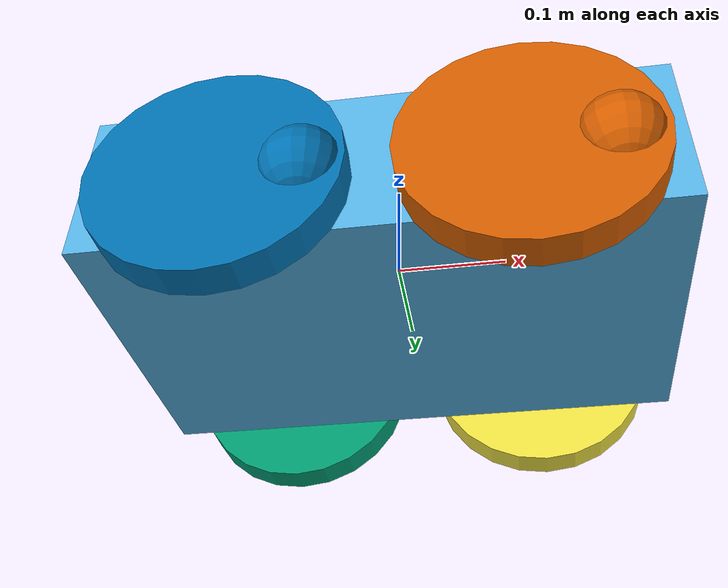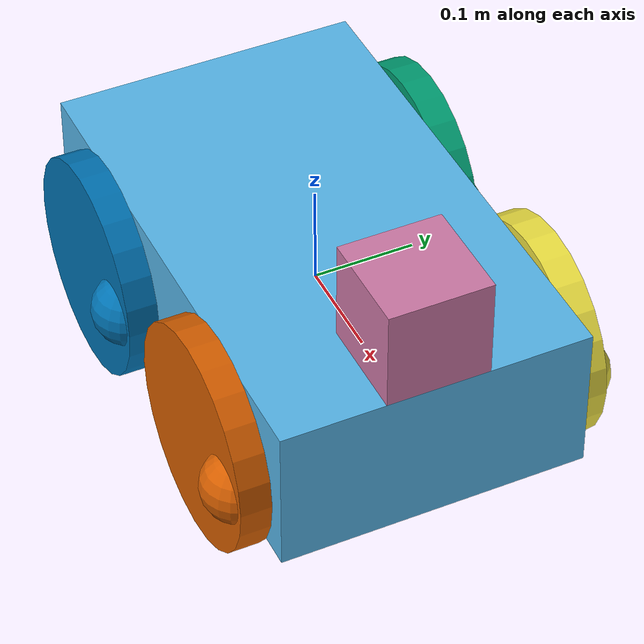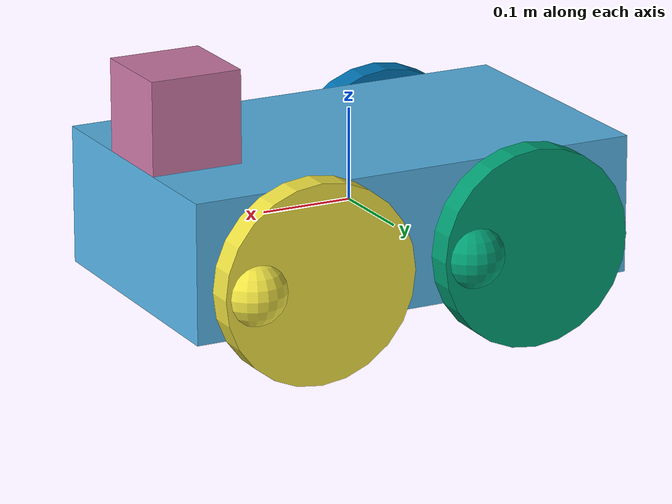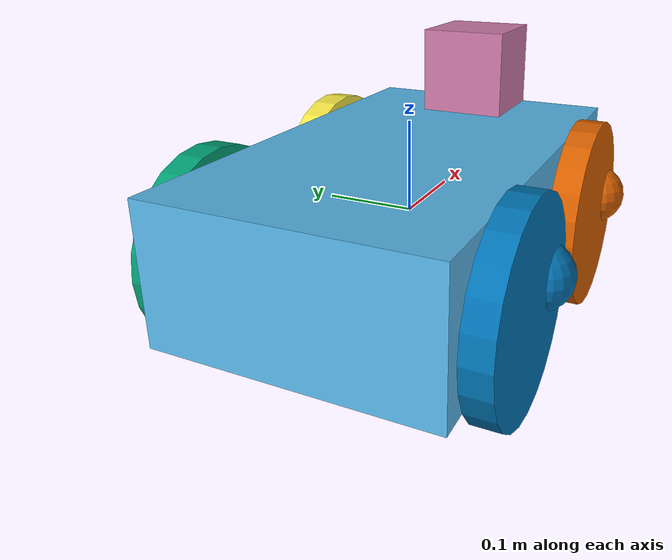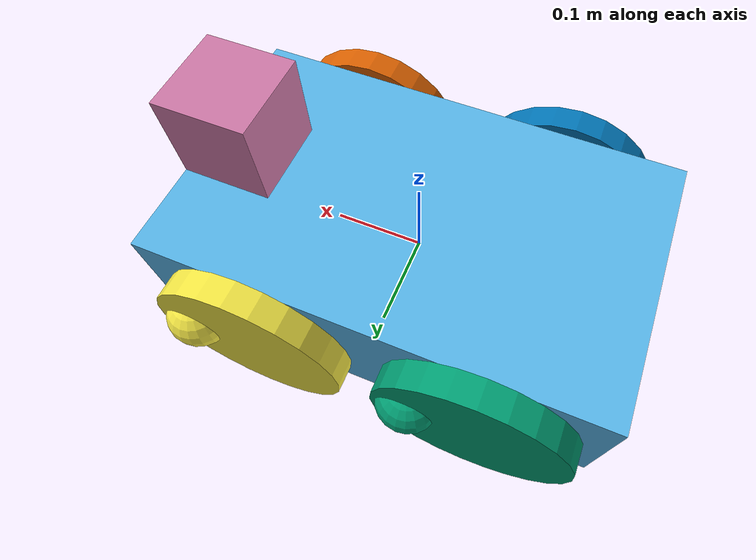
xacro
<?xml version='1.0'?>

<!-- choose a name space and start xacro -->
<robot name="scout" xmlns:xacro="http://www.ros.org/wiki/xacro">

  <!-- Start by including all required xacro files which hold the macros -->
  <xacro:include filename="$(find ssam_simulation)/models/scout/scout.gazebo" />
  <xacro:include filename="$(find ssam_simulation)/models/scout/materials.xacro"   />
  <xacro:include filename="$(find ssam_simulation)/models/scout/macros.xacro"      />
  <xacro:include filename="$(find ssam_simulation)/models/scout/parameter.xacro"   />

 <!-- Create a dummy link as base link -->
  <link name='base_link'>
    <pose>0 0 0 0 0 0</pose>
  </link>
  <joint type="fixed" name="base_link_to_chassis">
    <child link="chassis_link"/>
    <parent link="base_link"/>
  </joint>

  <!-- Define the chassis of the differential drive robot, which is our base -->
  <link name='chassis_link'>
    <pose>0 0 0 0 0 0</pose>
    <!-- Define inertial system for the chassis -->
    <inertial>
      <mass value="${m_chassis}"/>
      <xacro:box_inertia m="${m_chassis}" x="${x_chassis}" y="${y_chassis}" z="${z_chassis}"/>
    </inertial>
    <!-- Define collision sorrounding box -->
    <collision name='collision'>
      <origin xyz="0 0 0" rpy=" 0 0 0"/>
      <geometry>
        <box size="${x_chassis} ${y_chassis} ${z_chassis}"/>
      </geometry>
    </collision>
    <!-- Define visualization structure -->
    <visual name='base_link_visual'>
	  <origin xyz="0 0 0" rpy=" 0 0 0"/>
      <geometry>
        <box size="${x_chassis} ${y_chassis} ${z_chassis}"/>
      </geometry>
    </visual>
  </link>

  <!-- Add the wheels for the robot -->
  <xacro:macro name="scout_wheel" params="prefix xReflect yReflect">
    <link name="${prefix}_wheel">
      <collision name="collision">
        <origin xyz="0 0 0" rpy="0 1.5707 1.5707"/>
        <geometry>
          <cylinder radius="${r_wheel}" length="${h_wheel}"/>
        </geometry>
        <surface>
          <friction>
            <ode>
              <mu>1.0</mu>
              <mu2>1.0</mu2>
              <slip1>0.0</slip1>
              <slip2>0.0</slip2>
            </ode>
          </friction>
        </surface>
      </collision>
      <visual name="${prefix}_wheel_visual">
        <origin xyz="0 0 0" rpy="0 1.5707 1.5707"/>
        <geometry>
          <cylinder radius="${r_wheel}" length="${h_wheel}"/>
        </geometry>
      </visual>
      <visual name="${prefix}_wheel_test_ball">
        <origin xyz="0.07 0 0" rpy="0 0 0"/>
        <geometry>
          <sphere radius="${r_wheel/3}"/>
        </geometry>
      </visual>
      <inertial>
        <origin xyz="0 0 0" rpy="0 1.5707 1.5707"/>
        <mass value="${m_wheel}"/>
        <cylinder_inertia m="${m_wheel}" r="${r_wheel}" h="${h_wheel}"/>
        <xacro:cylinder_inertia m="${m_wheel}" r="${r_wheel}" h="${h_wheel}"/>
      </inertial>
    </link>

    <joint type="continuous" name="${prefix}_wheel_hinge">
      <origin xyz="${xReflect*x_chassis/4} ${yReflect*(y_chassis/2+h_wheel/2)} ${r_wheel/2-z_chassis/2}" rpy="0 0 0"/>
      <child link="${prefix}_wheel"/>
      <parent link="base_link"/>
      <axis xyz="0 1 0" rpy="0 0 0"/>
      <limit effort="100" velocity="100"/>
      <joint_properties damping="0.0" friction="0.0"/>
    </joint>
  </xacro:macro>

  <xacro:scout_wheel prefix="left_back" xReflect="-1" yReflect="1"/>
  <xacro:scout_wheel prefix="left_front" xReflect="1" yReflect="1"/>
  <xacro:scout_wheel prefix="right_back" xReflect="-1" yReflect="-1"/>
  <xacro:scout_wheel prefix="right_front" xReflect="1" yReflect="-1"/>

  <link name="camera_link">
    <collision>
      <origin xyz="0 0 0" rpy="0 0 0"/>
      <geometry>
		<box size="${l_camera} ${w_camera} ${h_camera}"/>
      </geometry>
    </collision>
    <visual>
      <origin xyz="0 0 0" rpy="0 0 0"/>
      <geometry>
        <box size="${l_camera} ${w_camera} ${h_camera}"/>
      </geometry>
    </visual>
    <inertial>
      <mass value="1e-5" />
      <origin xyz="0 0 0" rpy="0 0 0"/>
      <inertia ixx="1e-6" ixy="0" ixz="0" iyy="1e-6" iyz="0" izz="1e-6" />
    </inertial>
  </link>

  <joint name="camera_joint" type="fixed">
    <origin xyz="${x_camera} ${y_camera} ${z_camera}" rpy="0 0 0"/>
    <parent link="base_link"/>
    <child link="camera_link"/>
  </joint>

  <link name="camera_link_optical">
  </link>

  <joint name="camera_optical_joint" type="fixed">
    <origin xyz="0 0 0" rpy="${-pi/2} 0 ${-pi/2}"/>
    <parent link="camera_link"/>
    <child link="camera_link_optical"/>
  </joint>

  <link name="imu_link">
    <pose>0 0 0 0 0 0</pose>
  </link>
  <joint name="base_imu_link" type="fixed">
    <origin xyz="0 0 0" rpy="0 0 0" />
    <parent link="base_link" />
    <child link="imu_link" />
  </joint>

  <transmission name="left_back_wheel_transmission">
    <type>transmission_interface/SimpleTransmission</type>
    <joint name="left_back_wheel_hinge">
      <hardwareInterface>hardware_interface/VelocityJointInterface</hardwareInterface>
    </joint>
    <actuator name="left_back_wheel_motor">
      <hardwareInterface>hardware_interface/VelocityJointInterface</hardwareInterface>
      <mechanicalReduction>1</mechanicalReduction>
    </actuator>
  </transmission>

  <transmission name="right_back_wheel_transmission">
    <type>transmission_interface/SimpleTransmission</type>
    <joint name="right_back_wheel_hinge">
      <hardwareInterface>hardware_interface/VelocityJointInterface</hardwareInterface>
    </joint>
    <actuator name="right_back_wheel_motor">
      <hardwareInterface>hardware_interface/VelocityJointInterface</hardwareInterface>
      <mechanicalReduction>1</mechanicalReduction>
    </actuator>
  </transmission>

  <transmission name="left_front_wheel_transmission">
    <type>transmission_interface/SimpleTransmission</type>
    <joint name="left_front_wheel_hinge">
      <hardwareInterface>hardware_interface/VelocityJointInterface</hardwareInterface>
    </joint>
    <actuator name="left_front_wheel_motor">
      <hardwareInterface>hardware_interface/VelocityJointInterface</hardwareInterface>
      <mechanicalReduction>1</mechanicalReduction>
    </actuator>
  </transmission>

  <transmission name="right_front_wheel_transmission">
    <type>transmission_interface/SimpleTransmission</type>
    <joint name="right_front_wheel_hinge">
      <hardwareInterface>hardware_interface/VelocityJointInterface</hardwareInterface>
    </joint>
    <actuator name="right_front_wheel_motor">
      <hardwareInterface>hardware_interface/VelocityJointInterface</hardwareInterface>
      <mechanicalReduction>1</mechanicalReduction>
    </actuator>
  </transmission>

 </robot>

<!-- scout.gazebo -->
<robot xmlns:xacro="http://www.ros.org/wiki/xacro">
  <xacro:include filename="$(find ssam_simulation)/models/scout/parameter.xacro" />

  <gazebo>
    <plugin name="gazebo_ros_control" filename="libgazebo_ros_control.so">
      <robotNamespace>/scout</robotNamespace>
      <robotSimType>gazebo_ros_control/DefaultRobotHWSim</robotSimType>
    </plugin>
  </gazebo>

  <gazebo reference="imu_link">
    <gravity>true</gravity>
    <sensor name="imu_sensor" type="imu">
        <always_on>true</always_on>
        <update_rate>100</update_rate>
        <visualize>true</visualize>
        <topic>__default_topic__</topic>
        <plugin filename="libgazebo_ros_imu_sensor.so" name="imu_plugin">
            <topicName>/imu0</topicName>
            <bodyName>imu_link</bodyName>
            <updateRateHZ>10.0</updateRateHZ>
            <gaussianNoise>0.0</gaussianNoise>
            <xyzOffset>0 0 0</xyzOffset>
            <rpyOffset>0 0 0</rpyOffset>
            <frameName>imu_link</frameName>
            <initialOrientationAsReference>false</initialOrientationAsReference>
        </plugin>
        <pose>0 0 0 0 0 0</pose>
    </sensor>
  </gazebo>

<gazebo reference="camera_link">
    <sensor type="multicamera" name="stereo_camera">
      <update_rate>${camera_fps}</update_rate>
      <camera name="left">
        <horizontal_fov>${camera_fov}</horizontal_fov>
        <image>
          <width>${camera_res_w}</width>
          <height>${camera_res_h}</height>
          <format>R8G8B8</format>
        </image>
        <clip>
          <near>0.02</near>
          <far>300</far>
        </clip>
        <noise>
          <type>gaussian</type>
          <mean>0.0</mean>
          <stddev>0.007</stddev>
        </noise>
      </camera>
      <camera name="right">
        <pose>0 -0.08 0 0 0 0</pose>
        <horizontal_fov>${camera_fov}</horizontal_fov>
        <image>
          <width>${camera_res_w}</width>
          <height>${camera_res_h}</height>
          <format>R8G8B8</format>
        </image>
        <clip>
          <near>0.02</near>
          <far>300</far>
        </clip>
        <noise>
          <type>gaussian</type>
          <mean>0.0</mean>
          <stddev>0.007</stddev>
        </noise>
      </camera>
      <plugin name="stereo_camera_controller" filename="libgazebo_ros_multicamera.so">
        <alwaysOn>true</alwaysOn>
        <updateRate>0.0</updateRate>
        <cameraName>stereo</cameraName>
        <imageTopicName>image_raw</imageTopicName>
        <cameraInfoTopicName>camera_info</cameraInfoTopicName>
        <frameName>camera_link_optical</frameName>
        <hackBaseline>0.08</hackBaseline>
        <distortionK1>0.0</distortionK1>
        <distortionK2>0.0</distortionK2>
        <distortionK3>0.0</distortionK3>
        <distortionT1>0.0</distortionT1>
        <distortionT2>0.0</distortionT2>
      </plugin>
    </sensor>
  </gazebo>

  <!-- Paint the robot -->
<gazebo reference="base_link">
    <material>Gazebo/Orange</material>
  </gazebo>
</robot>

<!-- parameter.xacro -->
<robot xmlns:xacro="http://www.ros.org/wiki/xacro">

  <!-- Define parameter for the differential drive robot -->
  <!-- Parameter for the chassis, size [m] and mass [kg] -->
  <xacro:property name="x_chassis" value="0.5" />
  <xacro:property name="y_chassis" value="0.3" />
  <xacro:property name="z_chassis" value="0.15" />
  <xacro:property name="m_chassis" value="10.0" />

  <!-- Parameter for the wheels, radius [m], height [m], mass [kg], torque [Nm], wheelbase [m] -->
  <xacro:property name="r_wheel" value="0.1075"/>
  <xacro:property name="h_wheel" value="0.03" />
  <xacro:property name="m_wheel" value="3.0" />
  <xacro:property name="torque_wheel" value="10" />
  <xacro:property name="L_wheel" value="0.1788" />

  <!-- Parameters for the stereo camera-->
  <xacro:property name="x_camera" value="0.2" />
  <xacro:property name="y_camera" value="0" />
  <xacro:property name="z_camera" value="${z_chassis/2 + h_camera/2}"/>
  <xacro:property name="w_camera" value="0.1" />
  <xacro:property name="l_camera" value="0.1" />
  <xacro:property name="h_camera" value="0.1" />
  <xacro:property name="camera_res_w" value="1280" />
  <xacro:property name="camera_res_h" value="800" />
  <xacro:property name="camera_fov" value="1.22173" />
  <xacro:property name="camera_fps" value="5.0" />

</robot>
